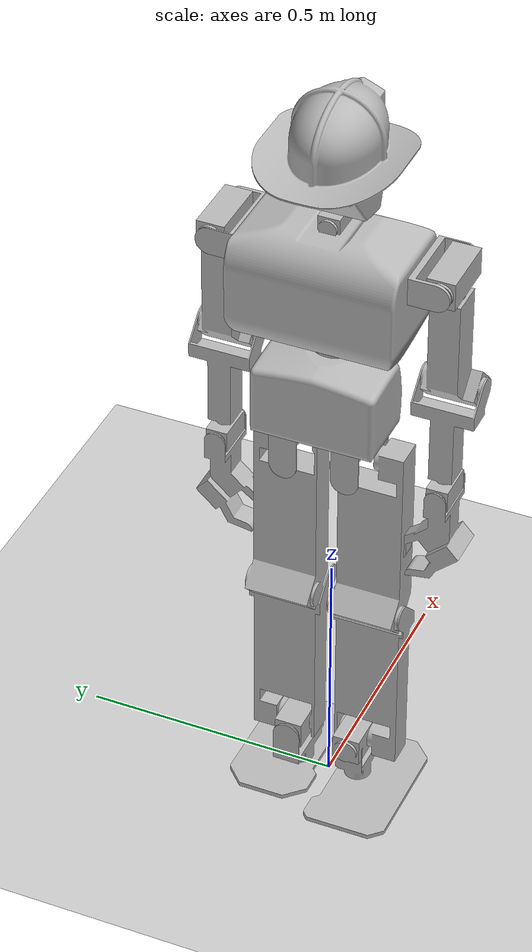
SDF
<?xml version="1.0"?>
<sdf version="1.3">
<world name="default">

<plugin name="gz_world_manager" filename="libgz_world_manager.so" />

<physics type="ode">
	<gravity>0 0 -9.81</gravity>
	<update_rate>-1</update_rate>
	<ode>
		<solver>
			<type>quick</type>
			<dt>0.000334</dt>
			<iters>90</iters>
			<sor>1.2</sor>
		</solver>
		<constraints>
			<cfm>0.0</cfm>
			<erp>0.2</erp>
			<contact_max_correcting_vel>100.0</contact_max_correcting_vel>
			<contact_surface_layer>0.0</contact_surface_layer>
		</constraints>
	</ode>
</physics>

<!-- A ground plane -->
<include>
  <uri>model://ground_plane</uri>
</include>

<!-- A global light source -->
<include>
  <uri>model://sun</uri>
</include>

<include>
  <uri>model://thor_op</uri>
</include>

</world>
</sdf>

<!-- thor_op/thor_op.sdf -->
<!-- THOR-OP model script -->
<sdf version="1.4">
    <model name="thor_op">
        <plugin name="gz_comms_manager" filename="libgz_comms_manager.so" />

        <!-- head -->
        <link name="head">
            <pose>0 0 1.419 0 0 0</pose>
            <inertial>
                <mass>0.1</mass>
                <inertia>
                    <ixx>1.0</ixx>
                    <ixy>0.0</ixy>
                    <ixz>0.0</ixz>
                    <iyy>1.0</iyy>
                    <iyz>0.0</iyz>
                    <izz>1.0</izz>
                </inertia>
            </inertial>
            <collision name="head_collision">
                <pose>0 0 0 1.57 0 -1.57</pose>
                <geometry>
                    <mesh>
                        <uri>model://thor_op/meshes/head.stl</uri>
                        <scale>0.001 0.001 0.001</scale>
                    </mesh>
                </geometry>
            </collision>
            <visual name="head_visual">
                <pose>0 0 0 1.57 0 -1.57</pose>
                <geometry>
                    <mesh>
                        <uri>model://thor_op/meshes/head.stl</uri>
                        <scale>0.001 0.001 0.001</scale>
                    </mesh>
                </geometry>
            </visual>
        </link>

        <!-- neck -->
        <link name="neck">
            <pose>0 0 1.419 0 0 0</pose>
            <inertial>
                <mass>0.1</mass>
                <inertia>
                    <ixx>1.0</ixx>
                    <ixy>0.0</ixy>
                    <ixz>0.0</ixz>
                    <iyy>1.0</iyy>
                    <iyz>0.0</iyz>
                    <izz>1.0</izz>
                </inertia>
            </inertial>
            <collision name="neck_collision">
                <pose>0 0 -0.020 -1.57 0 0</pose>
                <geometry>
                    <mesh>
                        <uri>model://thor_op/meshes/neck.stl</uri>
                        <scale>0.001 0.001 0.001</scale>
                    </mesh>
                </geometry>
            </collision>
            <visual name="neck_visual">
                <pose>0 0 -0.020 -1.57 0 0</pose>
                <geometry>
                    <mesh>
                        <uri>model://thor_op/meshes/neck.stl</uri>
                        <scale>0.001 0.001 0.001</scale>
                    </mesh>
                </geometry>
            </visual>
        </link>

        <!-- main case -->
        <link name="main_case">
            <pose>0 0 1.222 0 0 0</pose>
            <inertial>
                <mass>.1</mass>
                <inertia>
                    <ixx>1.0</ixx>
                    <ixy>0.0</ixy>
                    <ixz>0.0</ixz>
                    <iyy>1.0</iyy>
                    <iyz>0.0</iyz>
                    <izz>1.0</izz>
                </inertia>
            </inertial>
            <collision name="main_case_collision">
                <pose>0 0 0 1.57 0 1.57</pose>
                <geometry>
                    <mesh>
                        <uri>model://thor_op/meshes/chest.stl</uri>
                        <scale>0.001 0.001 0.001</scale>
                    </mesh>
                </geometry>
            </collision>
            <visual name="main_case_visual">
                <pose>0 0 0 1.57 0 1.57</pose>
                <geometry>
                    <mesh>
                        <uri>model://thor_op/meshes/chest.stl</uri>
                        <scale>0.001 0.001 0.001</scale>
                    </mesh>
                </geometry>
            </visual>
            <sensor name="lidar_sensor1" type="ray">
                <!-- Hokuyo UTM-30LX-EW -->
                <always_on>1</always_on>
                <update_rate>10</update_rate>
                <pose>.0565 0 1.277 0 0 0</pose>
                <ray>
                    <scan>
                        <horizontal>
                            <samples>1081</samples>
                            <resolution>1</resolution>
                            <min_angle>-2.35619449</min_angle>
                            <max_angle>2.35619449</max_angle>
                        </horizontal>
                    </scan>
                    <range>
                        <min>.1</min>
                        <max>30</max>
                        <resolution>.05</resolution>
                    </range>
                </ray>
                <plugin name="gz_lidar_dump" filename="libgz_lidar_dump.so" />
            </sensor>
            <sensor name="camera_sensor1" type="camera">
                <pose>0 0 0.5 0 0 1.57</pose>
                <camera>
                    <horizontal_fov>1.57</horizontal_fov>
                    <image>
                        <width>640</width>
                        <height>480</height>
                        <format>R8G8B8</format>
                    </image>
                    <clip>
                        <near>0.5</near>
                        <far>5</far>
                    </clip>
                </camera>
                <plugin name="gz_camera_dump" filename="libgz_camera_dump.so" />
                <always_on>1</always_on>
                <update_rate>10</update_rate>
            </sensor>
        </link>

        <!-- torso pitch servo -->
        <link name="torso_pitch_servo">
            <pose>0 0 1.060 0 0 0</pose>
            <inertial>
                <mass>.1</mass>
                <inertia>
                    <ixx>1.0</ixx>
                    <ixy>0.0</ixy>
                    <ixz>0.0</ixz>
                    <iyy>1.0</iyy>
                    <iyz>0.0</iyz>
                    <izz>1.0</izz>
                </inertia>
            </inertial>
            <collision name="torso_pitch_servo_collision">
                <pose>0 0 -0.038 -1.57 0 1.57</pose>
                <geometry>
                    <mesh>
                        <uri>model://thor_op/meshes/torso_pitch_servo.stl</uri>
                        <scale>0.001 0.001 0.001</scale>
                    </mesh>
                </geometry>
            </collision>
            <visual name="torso_pitch_servo_visual">
                <pose>0 0 -0.038 1.57 0 1.57</pose>
                <geometry>
                    <mesh>
                        <uri>model://thor_op/meshes/torso_pitch_servo.stl</uri>
                        <scale>0.001 0.001 0.001</scale>
                    </mesh>
                </geometry>
            </visual>
        </link>

        <!-- torso -->
        <link name="torso">
            <pose>0 0 1.022 0 0 0</pose>
            <inertial>
                <mass>.2</mass>
                <inertia>
                    <ixx>1.0</ixx>
                    <ixy>0.0</ixy>
                    <ixz>0.0</ixz>
                    <iyy>1.0</iyy>
                    <iyz>0.0</iyz>
                    <izz>1.0</izz>
                </inertia>
            </inertial>
            <collision name="torso_collision">
                <pose>0 0 -0.086 1.57 0 1.57</pose>
                <geometry>
                    <mesh>
                        <uri>model://thor_op/meshes/pelvis.stl</uri>
                        <scale>0.001 0.001 0.001</scale>
                    </mesh>
                </geometry>
            </collision>
            <visual name="torso_pelvis_visual">
                <pose>0 0 -0.086 1.57 0 1.57</pose>
                <geometry>
                    <mesh>
                        <uri>model://thor_op/meshes/pelvis.stl</uri>
                        <scale>0.001 0.001 0.001</scale>
                    </mesh>
                </geometry>
            </visual>
            <sensor name="imu_sensor" type="imu">
                <always_on>1</always_on>
                <visualize>1</visualize>
                <topic>imu_sensor</topic>
            </sensor>
        </link>

        <!-- left shoulder pitch -->
        <link name="left_shoulder_pitch">
            <pose>0 .216 1.222 0 0 0</pose>
            <inertial>
                <mass>.1</mass>
                <inertia>
                    <ixx>1.0</ixx>
                    <ixy>0.0</ixy>
                    <ixz>0.0</ixz>
                    <iyy>1.0</iyy>
                    <iyz>0.0</iyz>
                    <izz>1.0</izz>
                </inertia>
            </inertial>
            <collision name="left_shoulder_pitch_collision">
                <pose>0 -0.055 0 3.14 -1.57 0</pose>
                <geometry>
                    <mesh>
                        <uri>model://thor_op/meshes/left_shoulder_pitch.stl</uri>
                        <scale>0.001 0.001 0.001</scale>
                    </mesh>
                </geometry>
            </collision>
            <visual name="left_shoulder_pitch_visual">
                <pose>0 -0.055 0 3.14 -1.57 0</pose>
                <geometry>
                    <mesh>
                        <uri>model://thor_op/meshes/left_shoulder_pitch.stl</uri>
                        <scale>0.001 0.001 0.001</scale>
                    </mesh>
                </geometry>
            </visual>
        </link>

        <!-- right shoulder pitch -->
        <link name="right_shoulder_pitch">
            <pose>0 -.216 1.222 0 0 0</pose>
            <inertial>
                <mass>.1</mass>
                <inertia>
                    <ixx>1.0</ixx>
                    <ixy>0.0</ixy>
                    <ixz>0.0</ixz>
                    <iyy>1.0</iyy>
                    <iyz>0.0</iyz>
                    <izz>1.0</izz>
                </inertia>
            </inertial>
            <collision name="right_shoulder_pitch_collision">
                <pose>0 0.055 0 3.14 -1.57 3.14</pose>
                <geometry>
                    <mesh>
                        <uri>model://thor_op/meshes/right_shoulder_pitch.stl</uri>
                        <scale>0.001 0.001 0.001</scale>
                    </mesh>
                </geometry>
            </collision>
            <visual name="right_shoulder_pitch_visual">
                <pose>0 0.055 0 3.14 -1.57 3.14</pose>
                <geometry>
                    <mesh>
                        <uri>model://thor_op/meshes/right_shoulder_pitch.stl</uri>
                        <scale>0.001 0.001 0.001</scale>
                    </mesh>
                </geometry>
            </visual>
        </link>

        <!-- left shoulder roll -->
        <link name="left_shoulder_roll">
            <pose>0 .216 1.222 0 0 0</pose>
            <inertial>
                <mass>.1</mass>
                <inertia>
                    <ixx>1.0</ixx>
                    <ixy>0.0</ixy>
                    <ixz>0.0</ixz>
                    <iyy>1.0</iyy>
                    <iyz>0.0</iyz>
                    <izz>1.0</izz>
                </inertia>
            </inertial>
            <collision name="left_shoulder_roll_collision">
                <pose>0.030 0 0 1.57 0 1.57</pose>
                <geometry>
                    <mesh>
                        <uri>model://thor_op/meshes/left_shoulder_roll.stl</uri>
                        <scale>0.001 0.001 0.001</scale>
                    </mesh>
                </geometry>
            </collision>
            <visual name="left_shoulder_roll_visual">
                <pose>0.030 0 0 1.57 0 1.57</pose>
                <geometry>
                    <mesh>
                        <uri>model://thor_op/meshes/left_shoulder_roll.dae</uri>
                        <scale>0.001 0.001 0.001</scale>
                    </mesh>
                </geometry>
            </visual>
        </link>

        <!-- right shoulder roll -->
        <link name="right_shoulder_roll">
            <pose>0 -.216 1.222 0 0 0</pose>
            <inertial>
                <mass>.1</mass>
                <inertia>
                    <ixx>1.0</ixx>
                    <ixy>0.0</ixy>
                    <ixz>0.0</ixz>
                    <iyy>1.0</iyy>
                    <iyz>0.0</iyz>
                    <izz>1.0</izz>
                </inertia>
            </inertial>
            <collision name="right_shoulder_roll_collision">
                <pose>0.030 0 0 1.57 0 -1.57</pose>
                <geometry>
                    <mesh>
                        <uri>model://thor_op/meshes/right_shoulder_roll.stl</uri>
                        <scale>0.001 0.001 0.001</scale>
                    </mesh>
                </geometry>
            </collision>
            <visual name="right_shoulder_roll_visual">
                <pose>0.030 0 0 1.57 0 -1.57</pose>
                <geometry>
                    <mesh>
                        <uri>model://thor_op/meshes/right_shoulder_roll.stl</uri>
                        <scale>0.001 0.001 0.001</scale>
                    </mesh>
                </geometry>
            </visual>
        </link>

        <!-- left upper arm -->
        <link name="left_upper_arm">
            <pose>0 .216 1.222 0 0 0</pose>
            <inertial>
                <mass>.1</mass>
                <inertia>
                    <ixx>1.0</ixx>
                    <ixy>0.0</ixy>
                    <ixz>0.0</ixz>
                    <iyy>1.0</iyy>
                    <iyz>0.0</iyz>
                    <izz>1.0</izz>
                </inertia>
            </inertial>
            <collision name="left_upper_arm_collision">
                <pose>0 0 -.025 1.57 0 1.57</pose>
                <geometry>
                    <mesh>
                        <uri>model://thor_op/meshes/left_shoulder_yaw.stl</uri>
                        <scale>0.001 0.001 0.001</scale>
                    </mesh>
                </geometry>
            </collision>
            <visual name="left_upper_arm_visual">
                <pose>0 0 -.025 1.57 0 1.57</pose>
                <geometry>
                    <mesh>
                        <uri>model://thor_op/meshes/left_shoulder_yaw.stl</uri>
                        <scale>0.001 0.001 0.001</scale>
                    </mesh>
                </geometry>
            </visual>
        </link>

        <!-- right upper arm -->
        <link name="right_upper_arm">
            <pose>0 -.216 1.222 0 0 0</pose>
            <inertial>
                <mass>.1</mass>
                <inertia>
                    <ixx>1.0</ixx>
                    <ixy>0.0</ixy>
                    <ixz>0.0</ixz>
                    <iyy>1.0</iyy>
                    <iyz>0.0</iyz>
                    <izz>1.0</izz>
                </inertia>
            </inertial>
            <collision name="right_upper_arm_collision">
                <pose>0 0 -.025 1.57 0 -1.57</pose>
                <geometry>
                    <mesh>
                        <uri>model://thor_op/meshes/right_shoulder_yaw.stl</uri>
                        <scale>0.001 0.001 0.001</scale>
                    </mesh>
                </geometry>
            </collision>
            <visual name="right_upper_arm_visual">
                <pose>0 0 -.025 1.57 0 -1.57</pose>
                <geometry>
                    <mesh>
                        <uri>model://thor_op/meshes/right_shoulder_yaw.stl</uri>
                        <scale>0.001 0.001 0.001</scale>
                    </mesh>
                </geometry>
            </visual>
        </link>

        <!-- left lower arm -->
        <link name="left_lower_arm">
            <pose>0 .216 .976 0 0 0</pose>
            <inertial>
                <mass>.1</mass>
                <inertia>
                    <ixx>1.0</ixx>
                    <ixy>0.0</ixy>
                    <ixz>0.0</ixz>
                    <iyy>1.0</iyy>
                    <iyz>0.0</iyz>
                    <izz>1.0</izz>
                </inertia>
            </inertial>
            <collision name="left_lower_arm_collision">
                <pose>0 0 0 1.57 0 1.57</pose>
                <geometry>
                    <mesh>
                        <uri>model://thor_op/meshes/left_arm_elbow.stl</uri>
                        <scale>0.001 0.001 0.001</scale>
                    </mesh>
                </geometry>
            </collision>
            <visual name="left_lower_arm_visual">
                <pose>0 0 0 1.57 0 1.57</pose>
                <geometry>
                    <mesh>
                        <uri>model://thor_op/meshes/left_arm_elbow.stl</uri>
                        <scale>0.001 0.001 0.001</scale>
                    </mesh>
                </geometry>
            </visual>
        </link>

        <!-- right lower arm -->
        <link name="right_lower_arm">
            <pose>0 -.216 .976 0 0 0</pose>
            <inertial>
                <mass>.1</mass>
                <inertia>
                    <ixx>1.0</ixx>
                    <ixy>0.0</ixy>
                    <ixz>0.0</ixz>
                    <iyy>1.0</iyy>
                    <iyz>0.0</iyz>
                    <izz>1.0</izz>
                </inertia>
            </inertial>
            <collision name="right_lower_arm_collision">
                <pose>0 0 0 1.57 0 -1.57</pose>
                <geometry>
                    <mesh>
                        <uri>model://thor_op/meshes/right_arm_elb_mir.stl</uri>
                        <scale>0.001 0.001 0.001</scale>
                    </mesh>
                </geometry>
            </collision>
            <visual name="right_lower_arm_visual">
                <pose>0 0 0 1.57 0 -1.57</pose>
                <geometry>
                    <mesh>
                        <uri>model://thor_op/meshes/right_arm_elb_mir.stl</uri>
                        <scale>0.001 0.001 0.001</scale>
                    </mesh>
                </geometry>
            </visual>
        </link>

        <!-- left wrist -->
        <link name="left_wrist">
            <pose>0 .216 .760 0 0 0</pose>
            <inertial>
                <mass>.1</mass>
                <inertia>
                    <ixx>1.0</ixx>
                    <ixy>0.0</ixy>
                    <ixz>0.0</ixz>
                    <iyy>1.0</iyy>
                    <iyz>0.0</iyz>
                    <izz>1.0</izz>
                </inertia>
            </inertial>
            <collision name="left_wrist_collision">
                <pose>0 0 0 1.57 0 1.57</pose>
                <geometry>
                    <mesh>
                        <uri>model://thor_op/meshes/left_wrist_yaw.stl</uri>
                        <scale>0.001 0.001 0.001</scale>
                    </mesh>
                </geometry>
            </collision>
            <visual name="left_wrist_visual">
                <pose>0 0 0 1.57 0 1.57</pose>
                <geometry>
                    <mesh>
                        <uri>model://thor_op/meshes/left_wrist_yaw.stl</uri>
                        <scale>0.001 0.001 0.001</scale>
                    </mesh>
                </geometry>
            </visual>
        </link>

        <!-- right wrist -->
        <link name="right_wrist">
            <pose>0 -.216 .760 0 0 0</pose>
            <inertial>
                <mass>.1</mass>
                <inertia>
                    <ixx>1.0</ixx>
                    <ixy>0.0</ixy>
                    <ixz>0.0</ixz>
                    <iyy>1.0</iyy>
                    <iyz>0.0</iyz>
                    <izz>1.0</izz>
                </inertia>
            </inertial>
            <collision name="right_wrist_collision">
                <pose>0 0 0 1.57 0 -1.57</pose>
                <geometry>
                    <mesh>
                        <uri>model://thor_op/meshes/right_wrist_yaw.stl</uri>
                        <scale>0.001 0.001 0.001</scale>
                    </mesh>
                </geometry>
            </collision>
            <visual name="right_wrist_visual">
                <pose>0 0 0 1.57 0 -1.57</pose>
                <geometry>
                    <mesh>
                        <uri>model://thor_op/meshes/right_wrist_yaw.stl</uri>
                        <scale>0.001 0.001 0.001</scale>
                    </mesh>
                </geometry>
            </visual>
        </link>

        <!--left gripper-->
        <link name="left_gripper">
            <pose>0 .216 .760 0 0 0</pose>
            <inertial>
                <mass>.1</mass>
                <inertia>
                    <ixx>1.0</ixx>
                    <ixy>0.0</ixy>
                    <ixz>0.0</ixz>
                    <iyy>1.0</iyy>
                    <iyz>0.0</iyz>
                    <izz>1.0</izz>
                </inertia>
            </inertial>
            <collision name="left_gripper_collision">
                <pose>0 0 0 1.57 0 1.57</pose>
                <geometry>
                    <mesh>
                        <uri>model://thor_op/meshes/left_wrist_roll.stl</uri>
                        <scale>0.001 0.001 0.001</scale>
                    </mesh>
                </geometry>
            </collision>
            <visual name="left_gripper_visual">
                <pose>0 0 0 1.57 0 1.57</pose>
                <geometry>
                    <mesh>
                        <uri>model://thor_op/meshes/left_wrist_roll.stl</uri>
                        <scale>0.001 0.001 0.001</scale>
                    </mesh>
                </geometry>
            </visual>
        </link>

        <!--right gripper-->
        <link name="right_gripper">
            <pose>0 -.216 .760 0 0 0</pose>
            <inertial>
                <mass>.1</mass>
                <inertia>
                    <ixx>1.0</ixx>
                    <ixy>0.0</ixy>
                    <ixz>0.0</ixz>
                    <iyy>1.0</iyy>
                    <iyz>0.0</iyz>
                    <izz>1.0</izz>
                </inertia>
            </inertial>
            <collision name="right_gripper_collision">
                <pose>0 0 0 1.57 0 -1.57</pose>
                <geometry>
                    <mesh>
                        <uri>model://thor_op/meshes/right_wrist_roll.stl</uri>
                        <scale>0.001 0.001 0.001</scale>
                    </mesh>
                </geometry>
            </collision>
            <visual name="right_gripper_visual">
                <pose>0 0 0 1.57 0 -1.57</pose>
                <geometry>
                    <mesh>
                        <uri>model://thor_op/meshes/right_wrist_roll.stl</uri>
                        <scale>0.001 0.001 0.001</scale>
                    </mesh>
                </geometry>
            </visual>
        </link>

        <!-- left hip -->
        <link name="left_hip">
            <pose>0 .060 .790 0 0 0</pose>
            <inertial>
                <mass>.1</mass>
                <inertia>
                    <ixx>1.0</ixx>
                    <ixy>0.0</ixy>
                    <ixz>0.0</ixz>
                    <iyy>1.0</iyy>
                    <iyz>0.0</iyz>
                    <izz>1.0</izz>
                </inertia>
            </inertial>
            <collision name="left_hip_collision">
                <pose>0 0 0.065 1.57 0 1.57</pose>
                <geometry>
                    <mesh>
                        <uri>model://thor_op/meshes/leg_hip_yaw.dae</uri>
                        <scale>0.001 0.001 0.001</scale>
                    </mesh>
                </geometry>
            </collision>
            <visual name="left_hip_visual">
                <pose>0 0 0.065 1.57 0 1.57</pose>
                <geometry>
                    <mesh>
                        <uri>model://thor_op/meshes/leg_hip_yaw.dae</uri>
                        <scale>0.001 0.001 0.001</scale>
                    </mesh>
                </geometry>
            </visual>
        </link>

        <!-- right hip -->
        <link name="right_hip">
            <pose>0 -.060 .790 0 0 0</pose>
            <inertial>
                <mass>.1</mass>
                <inertia>
                    <ixx>1.0</ixx>
                    <ixy>0.0</ixy>
                    <ixz>0.0</ixz>
                    <iyy>1.0</iyy>
                    <iyz>0.0</iyz>
                    <izz>1.0</izz>
                </inertia>
            </inertial>
            <collision name="right_hip_collision">
                <pose>0 0 0.065 1.57 0 -1.57</pose>
                <geometry>
                    <mesh>
                        <uri>model://thor_op/meshes/hip_yaw_mir.stl</uri>
                        <scale>0.001 0.001 0.001</scale>
                    </mesh>
                </geometry>
            </collision>
            <visual name="right_hip_visual">
                <pose>0 0 0.065 1.57 0 -1.57</pose>
                <geometry>
                    <mesh>
                        <uri>model://thor_op/meshes/hip_yaw_mir.stl</uri>
                        <scale>0.001 0.001 0.001</scale>
                    </mesh>
                </geometry>
            </visual>
        </link>

        <!-- left thigh -->
        <link name="left_thigh">
            <pose>0 0.060 0.790 0 0 0</pose>
            <inertial>
                <mass>.6</mass>
                <inertia>
                    <ixx>1.0</ixx>
                    <ixy>0.0</ixy>
                    <ixz>0.0</ixz>
                    <iyy>1.0</iyy>
                    <iyz>0.0</iyz>
                    <izz>1.0</izz>
                </inertia>
            </inertial>
            <collision name="left_thigh_collision">
                <pose>0 0 0 1.57 0 1.57</pose>
                <geometry>
                    <mesh>
                        <uri>model://thor_op/meshes/left_leg_thigh.stl</uri>
                        <scale>0.001 0.001 0.001</scale>
                    </mesh>
                </geometry>
            </collision>
            <visual name="left_thigh_visual">
                <pose>0 0 0 1.57 0 1.57</pose>
                <geometry>
                    <mesh>
                        <uri>model://thor_op/meshes/left_leg_thigh.stl</uri>
                        <scale>0.001 0.001 0.001</scale>
                    </mesh>
                </geometry>
            </visual>
        </link>

        <!-- right thigh -->
        <link name="right_thigh">
            <pose>0 -0.060 0.790 0 0 0</pose>
            <inertial>
                <mass>.6</mass>
                <inertia>
                    <ixx>1.0</ixx>
                    <ixy>0.0</ixy>
                    <ixz>0.0</ixz>
                    <iyy>1.0</iyy>
                    <iyz>0.0</iyz>
                    <izz>1.0</izz>
                </inertia>
            </inertial>
            <collision name="right_thigh_collision">
                <pose>0 0 0 1.57 0 -1.57</pose>
                <geometry>
                    <mesh>
                        <uri>model://thor_op/meshes/right_leg_thigh.stl</uri>
                        <scale>0.001 0.001 0.001</scale>
                    </mesh>
                </geometry>
            </collision>
            <visual name="right_thigh_visual">
                <pose>0 0 0 1.57 0 -1.57</pose>
                <geometry>
                    <mesh>
                        <uri>model://thor_op/meshes/right_leg_thigh.stl</uri>
                        <scale>0.001 0.001 0.001</scale>
                    </mesh>
                </geometry>
            </visual>
        </link>

        <!-- left leg -->
        <link name="left_leg">
            <pose>0 0.060 .454 0 0 0</pose>
            <inertial>
                <mass>1.0</mass>
                <inertia>
                    <ixx>1.0</ixx>
                    <ixy>0.0</ixy>
                    <ixz>0.0</ixz>
                    <iyy>1.0</iyy>
                    <iyz>0.0</iyz>
                    <izz>1.0</izz>
                </inertia>
            </inertial>
            <collision name="left_leg_collision">
                <pose>0 0 0 1.57 0 1.57</pose>
                <geometry>
                    <mesh>
                        <uri>model://thor_op/meshes/left_leg_shin.stl</uri>
                        <scale>0.001 0.001 0.001</scale>
                    </mesh>
                </geometry>
            </collision>
            <visual name="left_leg_visual">
                <pose>0 0 0 1.57 0 1.57</pose>
                <geometry>
                    <mesh>
                        <uri>model://thor_op/meshes/left_leg_shin.stl</uri>
                        <scale>0.001 0.001 0.001</scale>
                    </mesh>
                </geometry>
            </visual>
        </link>

        <!-- right leg -->
        <link name="right_leg">
            <pose>0 -0.060 .454 0 0 0</pose>
            <inertial>
                <mass>1.0</mass>
                <inertia>
                    <ixx>1.0</ixx>
                    <ixy>0.0</ixy>
                    <ixz>0.0</ixz>
                    <iyy>1.0</iyy>
                    <iyz>0.0</iyz>
                    <izz>1.0</izz>
                </inertia>
            </inertial>
            <collision name="right_leg_collision">
                <pose>0 0 0 1.57 0 -1.57</pose>
                <geometry>
                    <mesh>
                        <uri>model://thor_op/meshes/right_leg_shin.stl</uri>
                        <scale>0.001 0.001 0.001</scale>
                    </mesh>
                </geometry>
            </collision>
            <visual name="right_leg_visual">
                <pose>0 0 0 1.57 0 -1.57</pose>
                <geometry>
                    <mesh>
                        <uri>model://thor_op/meshes/right_leg_shin.stl</uri>
                        <scale>0.001 0.001 0.001</scale>
                    </mesh>
                </geometry>
            </visual>
        </link>

        <!-- left ankle -->
        <link name="left_ankle">
            <pose>0 0.060 0.118 0 0 0</pose>
            <inertial>
                <mass>.2</mass>
                <inertia>
                    <ixx>1.0</ixx>
                    <ixy>0.0</ixy>
                    <ixz>0.0</ixz>
                    <iyy>1.0</iyy>
                    <iyz>0.0</iyz>
                    <izz>1.0</izz>
                </inertia>
            </inertial>
            <collision name="left_ankle_collision">
                <pose>0 0 0 0 1.57 0</pose>
                <geometry>
                    <mesh>
                        <uri>model://thor_op/meshes/leg_ank_roll.stl</uri>
                        <scale>0.001 0.001 0.001</scale>
                    </mesh>
                </geometry>
            </collision>
            <visual name="left_ankle_visual">
                <pose>0 0 0 0 1.57 0</pose>
                <geometry>
                    <mesh>
                        <uri>model://thor_op/meshes/leg_ank_roll.stl</uri>
                        <scale>0.001 0.001 0.001</scale>
                    </mesh>
                </geometry>
            </visual>
        </link>

        <!-- right ankle -->
        <link name="right_ankle">
            <pose>0 -0.060 0.118 0 0 0</pose>
            <inertial>
                <mass>.2</mass>
                <inertia>
                    <ixx>1.0</ixx>
                    <ixy>0.0</ixy>
                    <ixz>0.0</ixz>
                    <iyy>1.0</iyy>
                    <iyz>0.0</iyz>
                    <izz>1.0</izz>
                </inertia>
            </inertial>
            <collision name="right_ankle_collision">
                <pose>0 0 0 0 1.57 0</pose>
                <geometry>
                    <mesh>
                        <uri>model://thor_op/meshes/leg_ank_roll.stl</uri>
                        <scale>0.001 0.001 0.001</scale>
                    </mesh>
                </geometry>
            </collision>
            <visual name="right_ankle_visual">
                <pose>0 0 0 0 1.57 0</pose>
                <geometry>
                    <mesh>
                        <uri>model://thor_op/meshes/leg_ank_roll.stl</uri>
                        <scale>0.001 0.001 0.001</scale>
                    </mesh>
                </geometry>
            </visual>
        </link>

        <!-- left foot -->
        <link name="l_foot">
            <pose>0 0.060 0.118 0 0 0</pose>
            <inertial>
                <mass>1.5</mass>
                <inertia>
                    <ixx>1.0</ixx>
                    <ixy>0.0</ixy>
                    <ixz>0.0</ixz>
                    <iyy>1.0</iyy>
                    <iyz>0.0</iyz>
                    <izz>1.0</izz>
                </inertia>
            </inertial>
            <collision name="l_foot_collision">
                <pose>0 0 0 1.57 0 1.57</pose>
                <geometry>
                    <mesh>
                        <uri>model://thor_op/meshes/left_leg_foot.stl</uri>
                        <scale>0.001 0.001 0.001</scale>
                    </mesh>
                </geometry>
                <!-- From atlas model -->
                <surface>
                    <friction>
                        <ode>
                            <mu>0.9</mu>
                            <mu2>0.9</mu2>
                            <fdir1>1 0 0</fdir1>
                        </ode>
                    </friction>
                    <contact>
                        <ode>
                            <max_vel>1.0</max_vel>
                            <min_depth>0.003</min_depth>
                        </ode>
                    </contact>
                </surface>
            </collision>
            <visual name="l_foot_visual">
                <pose>0 0 0 1.57 0 1.57</pose>
                <geometry>
                    <mesh>
                        <uri>model://thor_op/meshes/left_leg_foot.stl</uri>
                        <scale>0.001 0.001 0.001</scale>
                    </mesh>
                </geometry>
            </visual>
            <sensor name="l_foot_contact_sensor" type="contact">
                <always_on>1</always_on>
                <contact>
                    <collision>l_foot_collision</collision>
                </contact>
            </sensor>
        </link>

        <!-- right foot -->
        <link name="r_foot">
            <pose>0 -0.060 0.118 0 0 0</pose>
            <inertial>
                <mass>1.5</mass>
                <inertia>
                    <ixx>1.0</ixx>
                    <ixy>0.0</ixy>
                    <ixz>0.0</ixz>
                    <iyy>1.0</iyy>
                    <iyz>0.0</iyz>
                    <izz>1.0</izz>
                </inertia>
            </inertial>
            <collision name="r_foot_collision">
                <pose>0 0 0 1.57 0 -1.57</pose>
                <geometry>
                    <mesh>
                        <uri>model://thor_op/meshes/right_leg_foot.stl</uri>
                        <scale>0.001 0.001 0.001</scale>
                    </mesh>
                </geometry>
                <!-- From atlas model -->
                <surface>
                    <friction>
                        <ode>
                            <mu>0.9</mu>
                            <mu2>0.9</mu2>
                            <fdir1>1 0 0</fdir1>
                        </ode>
                    </friction>
                    <contact>
                        <ode>
                            <max_vel>1.0</max_vel>
                            <min_depth>0.003</min_depth>
                        </ode>
                    </contact>
                </surface>
            </collision>
            <visual name="r_foot_visual">
                <pose>0 0 0 1.57 0 -1.57</pose>
                <geometry>
                    <mesh>
                        <uri>model://thor_op/meshes/right_leg_foot.stl</uri>
                        <scale>0.001 0.001 0.001</scale>
                    </mesh>
                </geometry>
            </visual>
            <sensor name="r_foot_contact_sensor" type="contact">
                <always_on>1</always_on>
                <contact>
                    <collision>r_foot_collision</collision>
                </contact>
            </sensor>
        </link>

        <joint name="head_yaw" type="revolute">
            <pose>0 0 0 0 0 0</pose>
            <axis>
                <xyz>0 0 1</xyz>
                <limit>
                    <effort>40</effort>
                </limit>
                <dynamics>
                    <damping>1.0</damping>
                    <friction>0</friction>
                </dynamics>
            </axis>
            <physics>
                <ode>
                    <cfm_damping>1</cfm_damping>
                </ode>
            </physics>
            <parent>
                <link_name>main_case</link_name>
            </parent>
            <child>
                <link_name>neck</link_name>
            </child>
        </joint>
        <joint name="head_pitch" type="revolute">
            <pose>0 0 0 0 0 0</pose>
            <axis>
                <xyz>0 1 0</xyz>
                <limit>
                    <effort>40</effort>
                </limit>
                <dynamics>
                    <damping>1.0</damping>
                    <friction>0</friction>
                </dynamics>
            </axis>
            <physics>
                <ode>
                    <cfm_damping>1</cfm_damping>
                </ode>
            </physics>
            <parent>
                <link_name>neck</link_name>
            </parent>
            <child>
                <link_name>head</link_name>
            </child>
        </joint>
        <joint name="waist_pitch" type="revolute">
            <pose>0 0 0 0 0 0</pose>
            <axis>
                <xyz>0 1 0</xyz>
                <limit>
                    <effort>200</effort>
                </limit>
                <dynamics>
                    <damping>1.0</damping>
                    <friction>0</friction>
                </dynamics>
            </axis>
            <physics>
                <ode>
                    <cfm_damping>1</cfm_damping>
                </ode>
            </physics>
            <parent>
                <link_name>main_case</link_name>
            </parent>
            <child>
                <link_name>torso_pitch_servo</link_name>
            </child>
        </joint>
        <joint name="waist_yaw" type="revolute">
            <pose>0 0 0 0 0 0</pose>
            <axis>
                <xyz>0 0 1</xyz>
                <limit>
                    <effort>200</effort>
                </limit>
                <dynamics>
                    <damping>1.0</damping>
                    <friction>0</friction>
                </dynamics>
            </axis>
            <physics>
                <ode>
                    <cfm_damping>1</cfm_damping>
                </ode>
            </physics>
            <parent>
                <link_name>torso_pitch_servo</link_name>
            </parent>
            <child>
                <link_name>torso</link_name>
            </child>
        </joint>
        <joint name="l_shoulder_pitch" type="revolute">
            <pose>0 0 0 0 0 0</pose>
            <axis>
                <xyz>0 1 0</xyz>
                <limit>
                    <effort>100</effort>
                </limit>
                <dynamics>
                    <damping>1.0</damping>
                    <friction>0</friction>
                </dynamics>
            </axis>
            <physics>
                <ode>
                    <cfm_damping>1</cfm_damping>
                </ode>
            </physics>
            <parent>
                <link_name>main_case</link_name>
            </parent>
            <child>
                <link_name>left_shoulder_pitch</link_name>
            </child>
        </joint>
        <joint name="r_shoulder_pitch" type="revolute">
            <pose>0 0 0 0 0 0</pose>
            <axis>
                <xyz>0 1 0</xyz>
                <limit>
                    <effort>100</effort>
                </limit>
                <dynamics>
                    <damping>1.0</damping>
                    <friction>0</friction>
                </dynamics>
            </axis>
            <physics>
                <ode>
                    <cfm_damping>1</cfm_damping>
                </ode>
            </physics>
            <parent>
                <link_name>main_case</link_name>
            </parent>
            <child>
                <link_name>right_shoulder_pitch</link_name>
            </child>
        </joint>
        <joint name="l_shoulder_roll" type="revolute">
            <pose>0 0 0 0 0 0</pose>
            <axis>
                <xyz>1 0 0</xyz>
                <limit>
                    <effort>100</effort>
                </limit>
                <dynamics>
                    <damping>1.0</damping>
                    <friction>0</friction>
                </dynamics>
            </axis>
            <physics>
                <ode>
                    <cfm_damping>1</cfm_damping>
                </ode>
            </physics>
            <parent>
                <link_name>left_shoulder_pitch</link_name>
            </parent>
            <child>
                <link_name>left_shoulder_roll</link_name>
            </child>
        </joint>
        <joint name="r_shoulder_roll" type="revolute">
            <pose>0 0 0 0 0 0</pose>
            <axis>
                <xyz>1 0 0</xyz>
                <limit>
                    <effort>100</effort>
                </limit>
                <dynamics>
                    <damping>1.0</damping>
                    <friction>0</friction>
                </dynamics>
            </axis>
            <physics>
                <ode>
                    <cfm_damping>1</cfm_damping>
                </ode>
            </physics>
            <parent>
                <link_name>right_shoulder_pitch</link_name>
            </parent>
            <child>
                <link_name>right_shoulder_roll</link_name>
            </child>
        </joint>
        <joint name="l_shoulder_yaw" type="revolute">
            <pose>0 0 0 0 0 0</pose>
            <axis>
                <xyz>0 0 1</xyz>
                <limit>
                    <effort>100</effort>
                </limit>
                <dynamics>
                    <damping>1.0</damping>
                    <friction>0</friction>
                </dynamics>
            </axis>
            <physics>
                <ode>
                    <cfm_damping>1</cfm_damping>
                </ode>
            </physics>
            <parent>
                <link_name>left_shoulder_roll</link_name>
            </parent>
            <child>
                <link_name>left_upper_arm</link_name>
            </child>
        </joint>
        <joint name="r_shoulder_yaw" type="revolute">
            <pose>0 0 0 0 0 0</pose>
            <axis>
                <xyz>0 0 1</xyz>
                <limit>
                    <effort>100</effort>
                </limit>
                <dynamics>
                    <damping>1.0</damping>
                    <friction>0</friction>
                </dynamics>
            </axis>
            <physics>
                <ode>
                    <cfm_damping>1</cfm_damping>
                </ode>
            </physics>
            <parent>
                <link_name>right_shoulder_roll</link_name>
            </parent>
            <child>
                <link_name>right_upper_arm</link_name>
            </child>
        </joint>
        <joint name="l_elbow_pitch" type="revolute">
            <pose>.030 0 0 0 0 0</pose>
            <axis>
                <xyz>0 1 0</xyz>
                <limit>
                    <effort>100</effort>
                </limit>
                <dynamics>
                    <damping>1.0</damping>
                    <friction>0</friction>
                </dynamics>
            </axis>
            <physics>
                <ode>
                    <cfm_damping>1</cfm_damping>
                </ode>
            </physics>
            <parent>
                <link_name>left_upper_arm</link_name>
            </parent>
            <child>
                <link_name>left_lower_arm</link_name>
            </child>
        </joint>
        <joint name="r_elbow_pitch" type="revolute">
            <pose>.030 0 0 0 0 0</pose>
            <axis>
                <xyz>0 1 0</xyz>
                <limit>
                    <effort>100</effort>
                </limit>
                <dynamics>
                    <damping>1.0</damping>
                    <friction>0</friction>
                </dynamics>
            </axis>
            <physics>
                <ode>
                    <cfm_damping>1</cfm_damping>
                </ode>
            </physics>
            <parent>
                <link_name>right_upper_arm</link_name>
            </parent>
            <child>
                <link_name>right_lower_arm</link_name>
            </child>
        </joint>
        <joint name="l_wrist_yaw" type="revolute">
            <pose>0 0 0 0 0 0</pose>
            <axis>
                <xyz>0 0 1</xyz>
                <limit>
                    <effort>40</effort>
                </limit>
                <dynamics>
                    <damping>1.0</damping>
                    <friction>0</friction>
                </dynamics>
            </axis>
            <physics>
                <ode>
                    <cfm_damping>1</cfm_damping>
                </ode>
            </physics>
            <parent>
                <link_name>left_lower_arm</link_name>
            </parent>
            <child>
                <link_name>left_wrist</link_name>
            </child>
        </joint>
        <joint name="r_wrist_yaw" type="revolute">
            <pose>0 0 0 0 0 0</pose>
            <axis>
                <xyz>0 0 1</xyz>
                <limit>
                    <effort>40</effort>
                </limit>
                <dynamics>
                    <damping>1.0</damping>
                    <friction>0</friction>
                </dynamics>
            </axis>
            <physics>
                <ode>
                    <cfm_damping>1</cfm_damping>
                </ode>
            </physics>
            <parent>
                <link_name>right_lower_arm</link_name>
            </parent>
            <child>
                <link_name>right_wrist</link_name>
            </child>
        </joint>
        <joint name="l_wrist_roll" type="revolute">
            <pose>0 0 0 0 0 0</pose>
            <axis>
                <xyz>1 0 0</xyz>
                <limit>
                    <effort>40</effort>
                </limit>
                <dynamics>
                    <damping>1.0</damping>
                    <friction>0</friction>
                </dynamics>
            </axis>
            <physics>
                <ode>
                    <provide_feedback>1</provide_feedback>
                    <cfm_damping>1</cfm_damping>
                </ode>
            </physics>
            <parent>
                <link_name>left_wrist</link_name>
            </parent>
            <child>
                <link_name>left_gripper</link_name>
            </child>
        </joint>
        <joint name="r_wrist_roll" type="revolute">
            <pose>0 0 0 0 0 0</pose>
            <axis>
                <xyz>1 0 0</xyz>
                <limit>
                    <effort>40</effort>
                </limit>
                <dynamics>
                    <damping>1.0</damping>
                    <friction>0</friction>
                </dynamics>
            </axis>
            <physics>
                <ode>
                    <provide_feedback>1</provide_feedback>
                    <cfm_damping>1</cfm_damping>
                </ode>
            </physics>
            <parent>
                <link_name>right_wrist</link_name>
            </parent>
            <child>
                <link_name>right_gripper</link_name>
            </child>
        </joint>
        <joint name="l_hip_yaw" type="revolute">
            <pose>0 0 0 0 0 0</pose>
            <axis>
                <xyz>0 0 1</xyz>
                <limit>
                    <effort>100</effort>
                </limit>
                <dynamics>
                    <damping>1.0</damping>
                    <friction>0</friction>
                </dynamics>
            </axis>
            <physics>
                <ode>
                    <cfm_damping>1</cfm_damping>
                </ode>
            </physics>
            <parent>
                <link_name>torso</link_name>
            </parent>
            <child>
                <link_name>left_hip</link_name>
            </child>
        </joint>
        <joint name="r_hip_yaw" type="revolute">
            <pose>0 0 0 0 0 0</pose>
            <axis>
                <xyz>0 0 1</xyz>
                <limit>
                    <effort>100</effort>
                </limit>
                <dynamics>
                    <damping>1.0</damping>
                    <friction>0</friction>
                </dynamics>
            </axis>
            <physics>
                <ode>
                    <cfm_damping>1</cfm_damping>
                </ode>
            </physics>
            <parent>
                <link_name>torso</link_name>
            </parent>
            <child>
                <link_name>right_hip</link_name>
            </child>
        </joint>
        <joint name="l_hip_roll" type="revolute">
            <pose>0 0 0 0 0 0</pose>
            <axis>
                <xyz>1 0 0</xyz>
                <limit>
                    <effort>100</effort>
                </limit>
                <dynamics>
                    <damping>1.0</damping>
                    <friction>0</friction>
                </dynamics>
            </axis>
            <physics>
                <ode>
                    <cfm_damping>1</cfm_damping>
                </ode>
            </physics>
            <parent>
                <link_name>torso</link_name>
            </parent>
            <child>
                <link_name>left_hip</link_name>
            </child>
        </joint>
        <joint name="r_hip_roll" type="revolute">
            <pose>0 0 0 0 0 0</pose>
            <axis>
                <xyz>1 0 0</xyz>
                <limit>
                    <effort>100</effort>
                </limit>
                <dynamics>
                    <damping>1.0</damping>
                    <friction>0</friction>
                </dynamics>
            </axis>
            <physics>
                <ode>
                    <cfm_damping>1</cfm_damping>
                </ode>
            </physics>
            <parent>
                <link_name>torso</link_name>
            </parent>
            <child>
                <link_name>right_hip</link_name>
            </child>
        </joint>
        <joint name="l_hip_pitch" type="revolute">
            <pose>0 0 0 0 0 0</pose>
            <axis>
                <xyz>0 1 0</xyz>
                <limit>
                    <effort>200</effort>
                </limit>
                <dynamics>
                    <damping>1.0</damping>
                    <friction>0</friction>
                </dynamics>
            </axis>
            <physics>
                <ode>
                    <cfm_damping>1</cfm_damping>
                </ode>
            </physics>
            <parent>
                <link_name>left_hip</link_name>
            </parent>
            <child>
                <link_name>left_thigh</link_name>
            </child>
        </joint>
        <joint name="r_hip_pitch" type="revolute">
            <pose>0 0 0 0 0 0</pose>
            <axis>
                <xyz>0 1 0</xyz>
                <limit>
                    <effort>200</effort>
                </limit>
                <dynamics>
                    <damping>1.0</damping>
                    <friction>0</friction>
                </dynamics>
            </axis>
            <physics>
                <ode>
                    <cfm_damping>1</cfm_damping>
                </ode>
            </physics>
            <parent>
                <link_name>right_hip</link_name>
            </parent>
            <child>
                <link_name>right_thigh</link_name>
            </child>
        </joint>
        <joint name="l_knee_pitch" type="revolute">
            <pose>-.030 0 0 0 0 0</pose>
            <axis>
                <xyz>0 1 0</xyz>
                <limit>
                    <effort>200</effort>
                </limit>
                <dynamics>
                    <damping>1.0</damping>
                    <friction>0</friction>
                </dynamics>
            </axis>
            <physics>
                <ode>
                    <cfm_damping>1</cfm_damping>
                </ode>
            </physics>
            <parent>
                <link_name>left_thigh</link_name>
            </parent>
            <child>
                <link_name>left_leg</link_name>
            </child>
        </joint>
        <joint name="r_knee_pitch" type="revolute">
            <pose>-.030 0 0 0 0 0</pose>
            <axis>
                <xyz>0 1 0</xyz>
                <limit>
                    <effort>200</effort>
                </limit>
                <dynamics>
                    <damping>1.0</damping>
                    <friction>0</friction>
                </dynamics>
            </axis>
            <physics>
                <ode>
                    <cfm_damping>1</cfm_damping>
                </ode>
            </physics>
            <parent>
                <link_name>right_thigh</link_name>
            </parent>
            <child>
                <link_name>right_leg</link_name>
            </child>
        </joint>
        <joint name="l_ankle_pitch" type="revolute">
            <pose>0 0 0 0 0 0</pose>
            <axis>
                <xyz>0 1 0</xyz>
                <limit>
                    <effort>200</effort>
                </limit>
                <dynamics>
                    <damping>1.0</damping>
                    <friction>0</friction>
                </dynamics>
            </axis>
            <physics>
                <ode>
                    <cfm_damping>1</cfm_damping>
                </ode>
            </physics>
            <parent>
                <link_name>left_leg</link_name>
            </parent>
            <child>
                <link_name>left_ankle</link_name>
            </child>
        </joint>
        <joint name="r_ankle_pitch" type="revolute">
            <pose>0 0 0 0 0 0</pose>
            <axis>
                <xyz>0 1 0</xyz>
                <limit>
                    <effort>200</effort>
                </limit>
                <dynamics>
                    <damping>1.0</damping>
                    <friction>0</friction>
                </dynamics>
            </axis>
            <physics>
                <ode>
                    <cfm_damping>1</cfm_damping>
                </ode>
            </physics>
            <parent>
                <link_name>right_leg</link_name>
            </parent>
            <child>
                <link_name>right_ankle</link_name>
            </child>
        </joint>
        <joint name="l_ankle_roll" type="revolute">
            <pose>0 0 0 0 0 0</pose>
            <axis>
                <xyz>1 0 0</xyz>
                <limit>
                    <effort>100</effort>
                </limit>
                <dynamics>
                    <damping>1.0</damping>
                    <friction>0</friction>
                </dynamics>
            </axis>
            <physics>
                <ode>
                    <provide_feedback>1</provide_feedback>
                    <cfm_damping>1</cfm_damping>
                </ode>
            </physics>
            <parent>
                <link_name>left_ankle</link_name>
            </parent>
            <child>
                <link_name>l_foot</link_name>
            </child>
        </joint>
        <joint name="r_ankle_roll" type="revolute">
            <pose>0 0 0 0 0 0</pose>
            <axis>
                <xyz>1 0 0</xyz>
                <limit>
                    <effort>100</effort>
                </limit>
                <dynamics>
                    <damping>1.0</damping>
                    <friction>0</friction>
                </dynamics>
            </axis>
            <physics>
                <ode>
                    <provide_feedback>1</provide_feedback>
                    <cfm_damping>1</cfm_damping>
                </ode>
            </physics>
            <parent>
                <link_name>right_ankle</link_name>
            </parent>
            <child>
                <link_name>r_foot</link_name>
            </child>
        </joint>

    </model>

</sdf>
